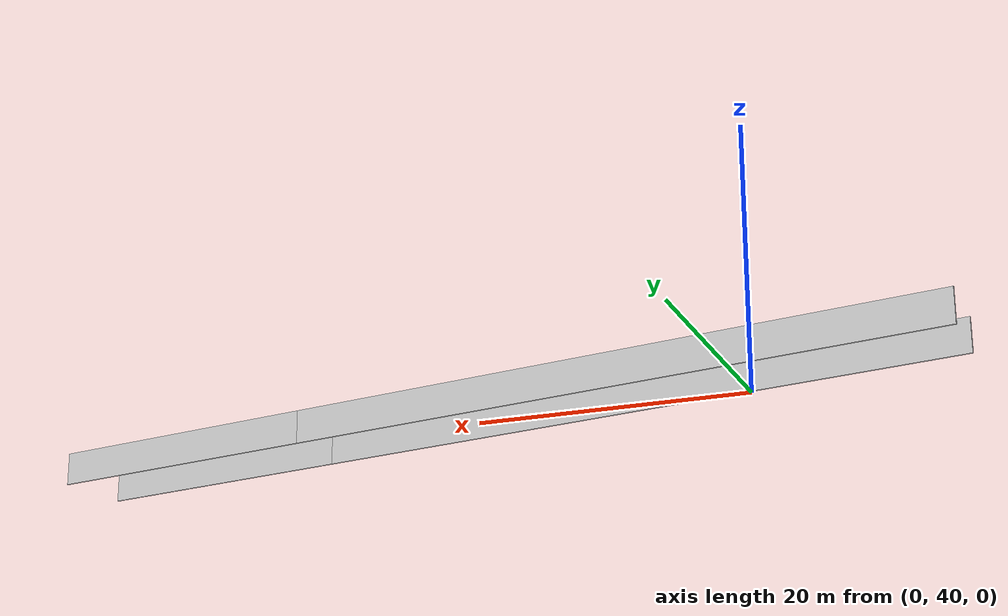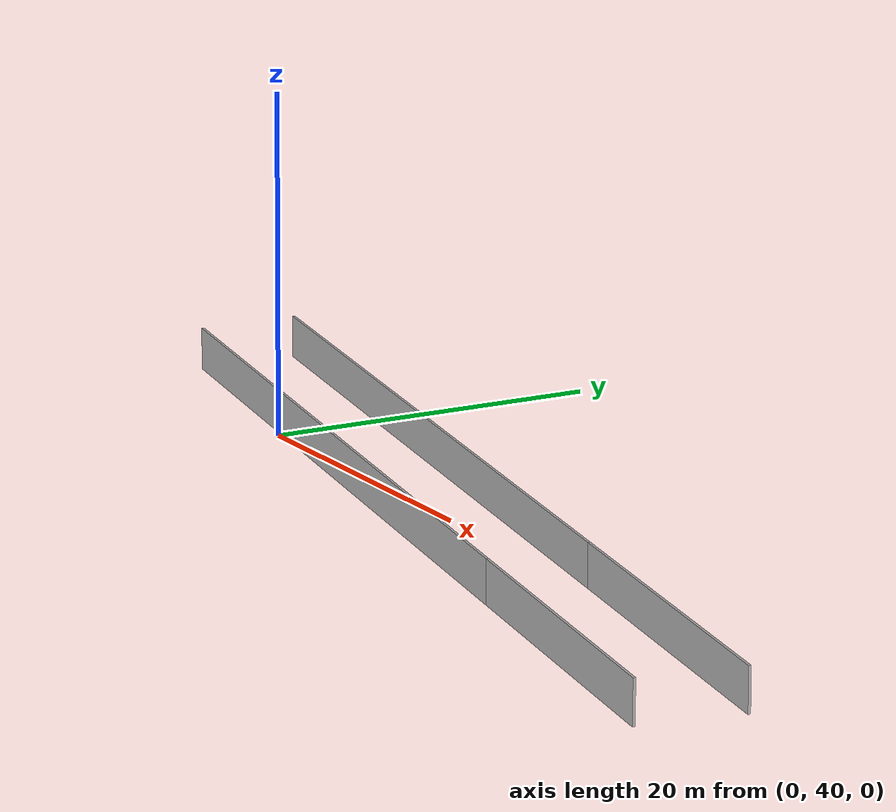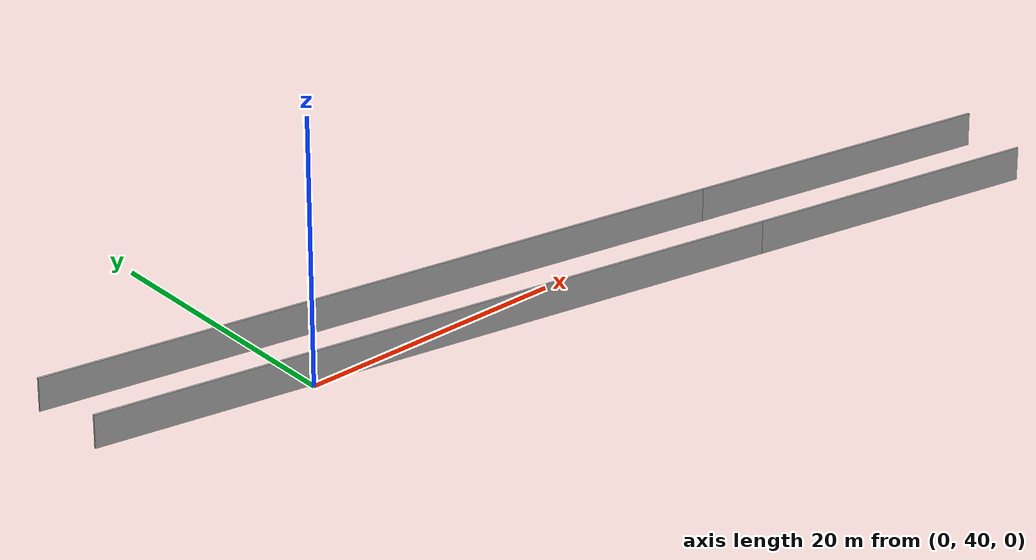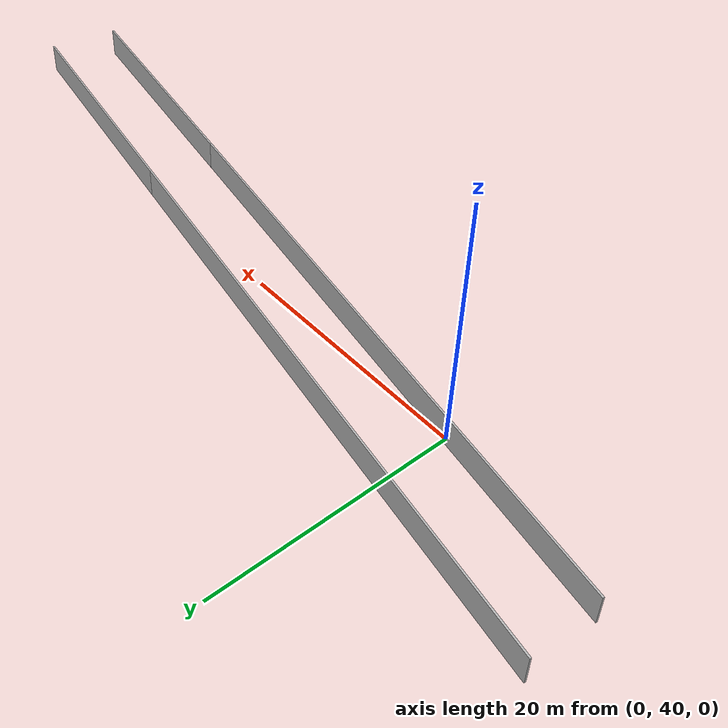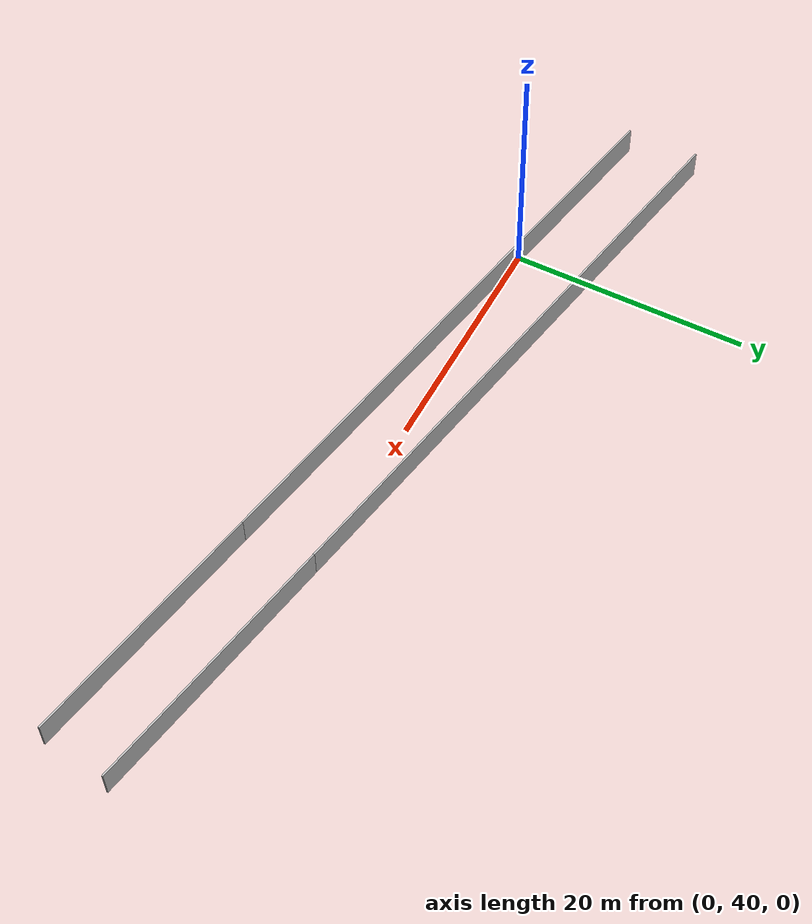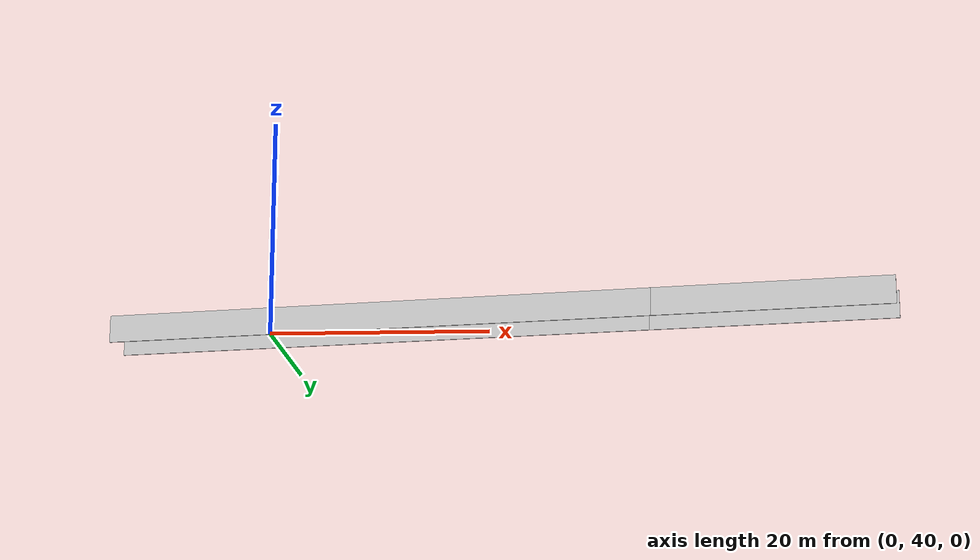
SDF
<?xml version="1.0" ?>
<sdf version="1.6">
  <model name="sps_2103">
    <pose frame="">0 0 0 0 -0 0</pose>
    <static>1</static>
    <self_collide>0</self_collide>
    <allow_auto_disable>0</allow_auto_disable>
    <link name="Wall127">
      <kinematic>0</kinematic>
      <gravity>1</gravity>
      <self_collide>0</self_collide>
      <collision name="collision">
        <geometry>
          <box>
            <size>21.2633 0.15 2.5</size>
          </box>
        </geometry>
        <pose frame="">0 0 0 0 -0 0</pose>
      </collision>
      <visual name="visual">
        <geometry>
          <box>
            <size>21.2633 0.15 2.5</size>
          </box>
        </geometry>
        <pose frame="">0 0 0 0 -0 0</pose>
        <cast_shadows>1</cast_shadows>
        <transparency>0.0</transparency>
      </visual>
      <pose frame="">44.9304 32.109 1.25 0 -0 2.96219</pose>
    </link>
    <link name="Wall128">
      <kinematic>0</kinematic>
      <gravity>1</gravity>
      <self_collide>0</self_collide>
      <collision name="collision">
        <geometry>
          <box>
            <size>50.8156 0.15 2.5</size>
          </box>
        </geometry>
        <pose frame="">0 0 0 0 -0 0</pose>
      </collision>
      <visual name="visual">
        <geometry>
          <box>
            <size>50.8156 0.15 2.5</size>
          </box>
        </geometry>
        <pose frame="">0 0 0 0 -0 0</pose>
        <cast_shadows>1</cast_shadows>
        <transparency>0.0</transparency>
      </visual>
      <pose frame="">9.46944 38.5401 1.25 0 -0 2.96219</pose>
    </link>
    <link name="Wall545">
      <kinematic>0</kinematic>
      <gravity>1</gravity>
      <self_collide>0</self_collide>
      <collision name="collision">
        <geometry>
          <box>
            <size>50.8156 0.15 2.5</size>
          </box>
        </geometry>
        <pose frame="">0 0 0 0 -0 0</pose>
      </collision>
      <visual name="visual">
        <geometry>
          <box>
            <size>50.8156 0.15 2.5</size>
          </box>
        </geometry>
        <pose frame="">0 0 0 0 -0 0</pose>
        <cast_shadows>1</cast_shadows>
        <transparency>0.0</transparency>
      </visual>
      <pose frame="">9.46944 44.6382 1.25 0 0 -0.179407</pose>
    </link>
    <link name="Wall546">
      <kinematic>0</kinematic>
      <gravity>1</gravity>
      <self_collide>0</self_collide>
      <collision name="collision">
        <geometry>
          <box>
            <size>22.3337 0.15 2.5</size>
          </box>
        </geometry>
        <pose frame="">0 0 0 0 -0 0</pose>
      </collision>
      <visual name="visual">
        <geometry>
          <box>
            <size>22.3337 0.15 2.5</size>
          </box>
        </geometry>
        <pose frame="">0 0 0 0 -0 0</pose>
        <cast_shadows>1</cast_shadows>
        <transparency>0.0</transparency>
      </visual>
      <pose frame="">45.4571 38.1116 1.25 0 0 -0.179407</pose>
    </link>
  </model>
</sdf>
